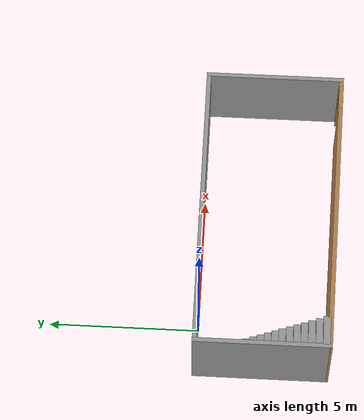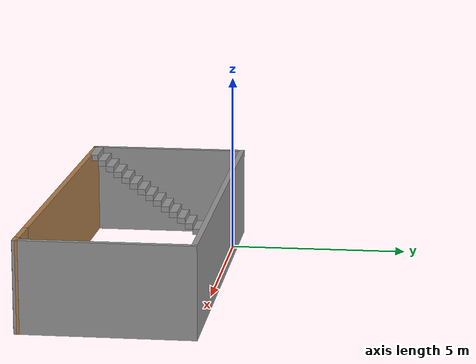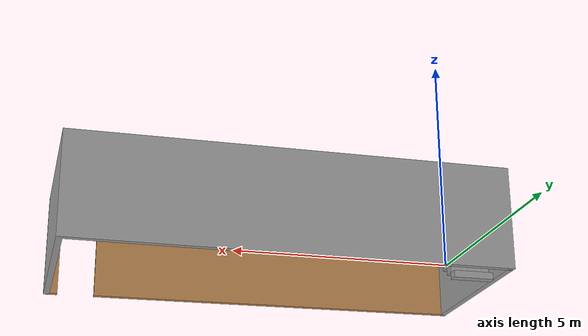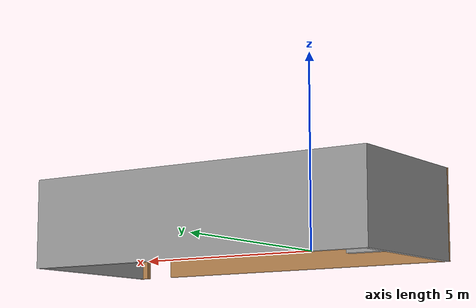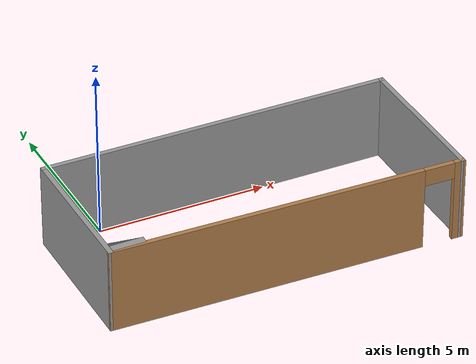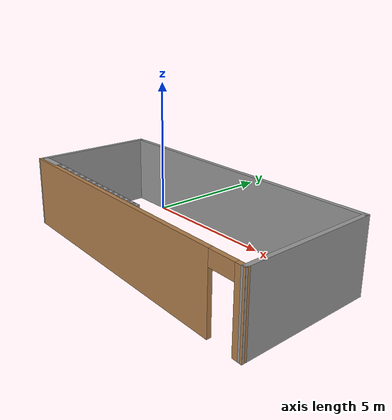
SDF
<?xml version='1.0'?>
<sdf version='1.7'>
  <model name='test2_house'>
    <pose>3.59896 -2.2288 0 0 -0 0</pose>
    <link name='Stairs_1'>
      <visual name='Stairs_1_Visual_0'>
        <pose>-4.62438 1.32787 0.083333 0 -0 0</pose>
        <geometry>
          <box>
            <size>1 0.233333 0.166667</size>
          </box>
        </geometry>
        <material>
          <script>
            <uri>file://media/materials/scripts/gazebo.material</uri>
            <name>Gazebo/Grey</name>
          </script>
          <ambient>1 1 1 1</ambient>
        </material>
        <meta>
          <layer>0</layer>
        </meta>
      </visual>
      <collision name='Stairs_1_Collision_0'>
        <geometry>
          <box>
            <size>1 0.233333 0.166667</size>
          </box>
        </geometry>
        <pose>-4.62438 1.32787 0.083333 0 -0 0</pose>
      </collision>
      <visual name='Stairs_1_Visual_1'>
        <pose>-4.62438 1.09454 0.25 0 -0 0</pose>
        <geometry>
          <box>
            <size>1 0.233333 0.166667</size>
          </box>
        </geometry>
        <material>
          <script>
            <uri>file://media/materials/scripts/gazebo.material</uri>
            <name>Gazebo/Grey</name>
          </script>
          <ambient>1 1 1 1</ambient>
        </material>
        <meta>
          <layer>0</layer>
        </meta>
      </visual>
      <collision name='Stairs_1_Collision_1'>
        <geometry>
          <box>
            <size>1 0.233333 0.166667</size>
          </box>
        </geometry>
        <pose>-4.62438 1.09454 0.25 0 -0 0</pose>
      </collision>
      <visual name='Stairs_1_Visual_2'>
        <pose>-4.62438 0.861204 0.416667 0 -0 0</pose>
        <geometry>
          <box>
            <size>1 0.233333 0.166667</size>
          </box>
        </geometry>
        <material>
          <script>
            <uri>file://media/materials/scripts/gazebo.material</uri>
            <name>Gazebo/Grey</name>
          </script>
          <ambient>1 1 1 1</ambient>
        </material>
        <meta>
          <layer>0</layer>
        </meta>
      </visual>
      <collision name='Stairs_1_Collision_2'>
        <geometry>
          <box>
            <size>1 0.233333 0.166667</size>
          </box>
        </geometry>
        <pose>-4.62438 0.861204 0.416667 0 -0 0</pose>
      </collision>
      <visual name='Stairs_1_Visual_3'>
        <pose>-4.62438 0.627871 0.583333 0 -0 0</pose>
        <geometry>
          <box>
            <size>1 0.233333 0.166667</size>
          </box>
        </geometry>
        <material>
          <script>
            <uri>file://media/materials/scripts/gazebo.material</uri>
            <name>Gazebo/Grey</name>
          </script>
          <ambient>1 1 1 1</ambient>
        </material>
        <meta>
          <layer>0</layer>
        </meta>
      </visual>
      <collision name='Stairs_1_Collision_3'>
        <geometry>
          <box>
            <size>1 0.233333 0.166667</size>
          </box>
        </geometry>
        <pose>-4.62438 0.627871 0.583333 0 -0 0</pose>
      </collision>
      <visual name='Stairs_1_Visual_4'>
        <pose>-4.62438 0.394538 0.75 0 -0 0</pose>
        <geometry>
          <box>
            <size>1 0.233333 0.166667</size>
          </box>
        </geometry>
        <material>
          <script>
            <uri>file://media/materials/scripts/gazebo.material</uri>
            <name>Gazebo/Grey</name>
          </script>
          <ambient>1 1 1 1</ambient>
        </material>
        <meta>
          <layer>0</layer>
        </meta>
      </visual>
      <collision name='Stairs_1_Collision_4'>
        <geometry>
          <box>
            <size>1 0.233333 0.166667</size>
          </box>
        </geometry>
        <pose>-4.62438 0.394538 0.75 0 -0 0</pose>
      </collision>
      <visual name='Stairs_1_Visual_5'>
        <pose>-4.62438 0.161204 0.916667 0 -0 0</pose>
        <geometry>
          <box>
            <size>1 0.233333 0.166667</size>
          </box>
        </geometry>
        <material>
          <script>
            <uri>file://media/materials/scripts/gazebo.material</uri>
            <name>Gazebo/Grey</name>
          </script>
          <ambient>1 1 1 1</ambient>
        </material>
        <meta>
          <layer>0</layer>
        </meta>
      </visual>
      <collision name='Stairs_1_Collision_5'>
        <geometry>
          <box>
            <size>1 0.233333 0.166667</size>
          </box>
        </geometry>
        <pose>-4.62438 0.161204 0.916667 0 -0 0</pose>
      </collision>
      <visual name='Stairs_1_Visual_6'>
        <pose>-4.62438 -0.072129 1.08333 0 -0 0</pose>
        <geometry>
          <box>
            <size>1 0.233333 0.166667</size>
          </box>
        </geometry>
        <material>
          <script>
            <uri>file://media/materials/scripts/gazebo.material</uri>
            <name>Gazebo/Grey</name>
          </script>
          <ambient>1 1 1 1</ambient>
        </material>
        <meta>
          <layer>0</layer>
        </meta>
      </visual>
      <collision name='Stairs_1_Collision_6'>
        <geometry>
          <box>
            <size>1 0.233333 0.166667</size>
          </box>
        </geometry>
        <pose>-4.62438 -0.072129 1.08333 0 -0 0</pose>
      </collision>
      <visual name='Stairs_1_Visual_7'>
        <pose>-4.62438 -0.305462 1.25 0 -0 0</pose>
        <geometry>
          <box>
            <size>1 0.233333 0.166667</size>
          </box>
        </geometry>
        <material>
          <script>
            <uri>file://media/materials/scripts/gazebo.material</uri>
            <name>Gazebo/Grey</name>
          </script>
          <ambient>1 1 1 1</ambient>
        </material>
        <meta>
          <layer>0</layer>
        </meta>
      </visual>
      <collision name='Stairs_1_Collision_7'>
        <geometry>
          <box>
            <size>1 0.233333 0.166667</size>
          </box>
        </geometry>
        <pose>-4.62438 -0.305462 1.25 0 -0 0</pose>
      </collision>
      <visual name='Stairs_1_Visual_8'>
        <pose>-4.62438 -0.538796 1.41667 0 -0 0</pose>
        <geometry>
          <box>
            <size>1 0.233333 0.166667</size>
          </box>
        </geometry>
        <material>
          <script>
            <uri>file://media/materials/scripts/gazebo.material</uri>
            <name>Gazebo/Grey</name>
          </script>
          <ambient>1 1 1 1</ambient>
        </material>
        <meta>
          <layer>0</layer>
        </meta>
      </visual>
      <collision name='Stairs_1_Collision_8'>
        <geometry>
          <box>
            <size>1 0.233333 0.166667</size>
          </box>
        </geometry>
        <pose>-4.62438 -0.538796 1.41667 0 -0 0</pose>
      </collision>
      <visual name='Stairs_1_Visual_9'>
        <pose>-4.62438 -0.772129 1.58333 0 -0 0</pose>
        <geometry>
          <box>
            <size>1 0.233333 0.166667</size>
          </box>
        </geometry>
        <material>
          <script>
            <uri>file://media/materials/scripts/gazebo.material</uri>
            <name>Gazebo/Grey</name>
          </script>
          <ambient>1 1 1 1</ambient>
        </material>
        <meta>
          <layer>0</layer>
        </meta>
      </visual>
      <collision name='Stairs_1_Collision_9'>
        <geometry>
          <box>
            <size>1 0.233333 0.166667</size>
          </box>
        </geometry>
        <pose>-4.62438 -0.772129 1.58333 0 -0 0</pose>
      </collision>
      <visual name='Stairs_1_Visual_10'>
        <pose>-4.62438 -1.00546 1.75 0 -0 0</pose>
        <geometry>
          <box>
            <size>1 0.233333 0.166667</size>
          </box>
        </geometry>
        <material>
          <script>
            <uri>file://media/materials/scripts/gazebo.material</uri>
            <name>Gazebo/Grey</name>
          </script>
          <ambient>1 1 1 1</ambient>
        </material>
        <meta>
          <layer>0</layer>
        </meta>
      </visual>
      <collision name='Stairs_1_Collision_10'>
        <geometry>
          <box>
            <size>1 0.233333 0.166667</size>
          </box>
        </geometry>
        <pose>-4.62438 -1.00546 1.75 0 -0 0</pose>
      </collision>
      <visual name='Stairs_1_Visual_11'>
        <pose>-4.62438 -1.2388 1.91667 0 -0 0</pose>
        <geometry>
          <box>
            <size>1 0.233333 0.166667</size>
          </box>
        </geometry>
        <material>
          <script>
            <uri>file://media/materials/scripts/gazebo.material</uri>
            <name>Gazebo/Grey</name>
          </script>
          <ambient>1 1 1 1</ambient>
        </material>
        <meta>
          <layer>0</layer>
        </meta>
      </visual>
      <collision name='Stairs_1_Collision_11'>
        <geometry>
          <box>
            <size>1 0.233333 0.166667</size>
          </box>
        </geometry>
        <pose>-4.62438 -1.2388 1.91667 0 -0 0</pose>
      </collision>
      <visual name='Stairs_1_Visual_12'>
        <pose>-4.62438 -1.47213 2.08333 0 -0 0</pose>
        <geometry>
          <box>
            <size>1 0.233333 0.166667</size>
          </box>
        </geometry>
        <material>
          <script>
            <uri>file://media/materials/scripts/gazebo.material</uri>
            <name>Gazebo/Grey</name>
          </script>
          <ambient>1 1 1 1</ambient>
        </material>
        <meta>
          <layer>0</layer>
        </meta>
      </visual>
      <collision name='Stairs_1_Collision_12'>
        <geometry>
          <box>
            <size>1 0.233333 0.166667</size>
          </box>
        </geometry>
        <pose>-4.62438 -1.47213 2.08333 0 -0 0</pose>
      </collision>
      <visual name='Stairs_1_Visual_13'>
        <pose>-4.62438 -1.70546 2.25 0 -0 0</pose>
        <geometry>
          <box>
            <size>1 0.233333 0.166667</size>
          </box>
        </geometry>
        <material>
          <script>
            <uri>file://media/materials/scripts/gazebo.material</uri>
            <name>Gazebo/Grey</name>
          </script>
          <ambient>1 1 1 1</ambient>
        </material>
        <meta>
          <layer>0</layer>
        </meta>
      </visual>
      <collision name='Stairs_1_Collision_13'>
        <geometry>
          <box>
            <size>1 0.233333 0.166667</size>
          </box>
        </geometry>
        <pose>-4.62438 -1.70546 2.25 0 -0 0</pose>
      </collision>
      <visual name='Stairs_1_Visual_14'>
        <pose>-4.62438 -1.9388 2.41667 0 -0 0</pose>
        <geometry>
          <box>
            <size>1 0.233333 0.166667</size>
          </box>
        </geometry>
        <material>
          <script>
            <uri>file://media/materials/scripts/gazebo.material</uri>
            <name>Gazebo/Grey</name>
          </script>
          <ambient>1 1 1 1</ambient>
        </material>
        <meta>
          <layer>0</layer>
        </meta>
      </visual>
      <collision name='Stairs_1_Collision_14'>
        <geometry>
          <box>
            <size>1 0.233333 0.166667</size>
          </box>
        </geometry>
        <pose>-4.62438 -1.9388 2.41667 0 -0 0</pose>
      </collision>
    </link>
    <link name='Wall_0'>
      <collision name='Wall_0_Collision'>
        <geometry>
          <box>
            <size>4.5 0.15 2.5</size>
          </box>
        </geometry>
        <pose>0 0 1.25 0 -0 0</pose>
      </collision>
      <visual name='Wall_0_Visual'>
        <pose>0 0 1.25 0 -0 0</pose>
        <geometry>
          <box>
            <size>4.5 0.15 2.5</size>
          </box>
        </geometry>
        <material>
          <script>
            <uri>file://media/materials/scripts/gazebo.material</uri>
            <name>Gazebo/Grey</name>
          </script>
          <ambient>1 1 1 1</ambient>
        </material>
        <meta>
          <layer>0</layer>
        </meta>
      </visual>
      <pose>-5.175 0.125895 0 0 -0 1.5708</pose>
    </link>
    <link name='Wall_1'>
      <collision name='Wall_1_Collision'>
        <geometry>
          <box>
            <size>10.5 0.15 2.5</size>
          </box>
        </geometry>
        <pose>0 0 1.25 0 -0 0</pose>
      </collision>
      <visual name='Wall_1_Visual'>
        <pose>0 0 1.25 0 -0 0</pose>
        <geometry>
          <box>
            <size>10.5 0.15 2.5</size>
          </box>
        </geometry>
        <material>
          <script>
            <uri>file://media/materials/scripts/gazebo.material</uri>
            <name>Gazebo/Grey</name>
          </script>
          <ambient>1 1 1 1</ambient>
        </material>
        <meta>
          <layer>0</layer>
        </meta>
      </visual>
      <pose>-0 2.3009 0 0 -0 0</pose>
    </link>
    <link name='Wall_2'>
      <collision name='Wall_2_Collision'>
        <geometry>
          <box>
            <size>4.75 0.15 2.5</size>
          </box>
        </geometry>
        <pose>0 0 1.25 0 -0 0</pose>
      </collision>
      <visual name='Wall_2_Visual'>
        <pose>0 0 1.25 0 -0 0</pose>
        <geometry>
          <box>
            <size>4.75 0.15 2.5</size>
          </box>
        </geometry>
        <material>
          <script>
            <uri>file://media/materials/scripts/gazebo.material</uri>
            <name>Gazebo/Grey</name>
          </script>
          <ambient>1 1 1 1</ambient>
        </material>
        <meta>
          <layer>0</layer>
        </meta>
      </visual>
      <pose>5.175 0.000895 0 0 -0 -1.5708</pose>
    </link>
    <link name='Wall_3'>
      <pose>-0 -2.1741 0 0 -0 3.11744</pose>
      <visual name='Wall_3_Visual_0'>
        <pose>-5.08275 0 1.25 0 -0 0</pose>
        <geometry>
          <box>
            <size>0.33752 0.15 2.5</size>
          </box>
        </geometry>
        <material>
          <script>
            <uri>file://media/materials/scripts/gazebo.material</uri>
            <name>Gazebo/Wood</name>
          </script>
          <ambient>1 1 1 1</ambient>
        </material>
        <meta>
          <layer>0</layer>
        </meta>
      </visual>
      <collision name='Wall_3_Collision_0'>
        <geometry>
          <box>
            <size>0.33752 0.15 2.5</size>
          </box>
        </geometry>
        <pose>-5.08275 0 1.25 0 -0 0</pose>
      </collision>
      <visual name='Wall_3_Visual_1'>
        <pose>0.61876 0 1.25 0 -0 0</pose>
        <geometry>
          <box>
            <size>9.2655 0.15 2.5</size>
          </box>
        </geometry>
        <material>
          <script>
            <uri>file://media/materials/scripts/gazebo.material</uri>
            <name>Gazebo/Wood</name>
          </script>
          <ambient>1 1 1 1</ambient>
        </material>
        <meta>
          <layer>0</layer>
        </meta>
      </visual>
      <collision name='Wall_3_Collision_1'>
        <geometry>
          <box>
            <size>9.2655 0.15 2.5</size>
          </box>
        </geometry>
        <pose>0.61876 0 1.25 0 -0 0</pose>
      </collision>
      <visual name='Wall_3_Visual_2'>
        <pose>-4.46399 0 2.25 0 -0 0</pose>
        <geometry>
          <box>
            <size>0.9 0.15 0.5</size>
          </box>
        </geometry>
        <material>
          <script>
            <uri>file://media/materials/scripts/gazebo.material</uri>
            <name>Gazebo/Wood</name>
          </script>
          <ambient>1 1 1 1</ambient>
        </material>
        <meta>
          <layer>0</layer>
        </meta>
      </visual>
      <collision name='Wall_3_Collision_2'>
        <geometry>
          <box>
            <size>0.9 0.15 0.5</size>
          </box>
        </geometry>
        <pose>-4.46399 0 2.25 0 -0 0</pose>
      </collision>
    </link>
    <static>1</static>
  </model>
</sdf>
